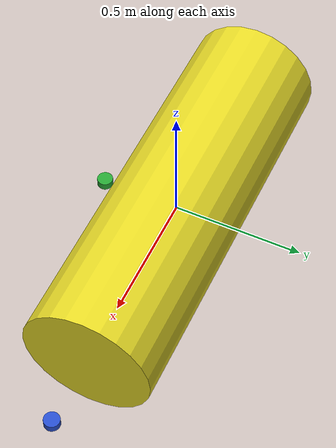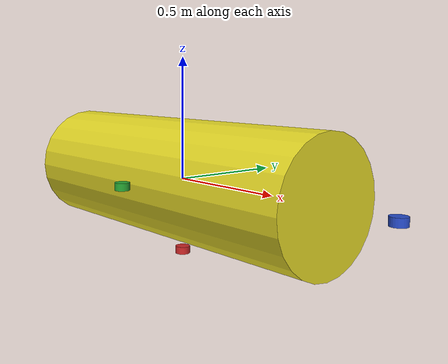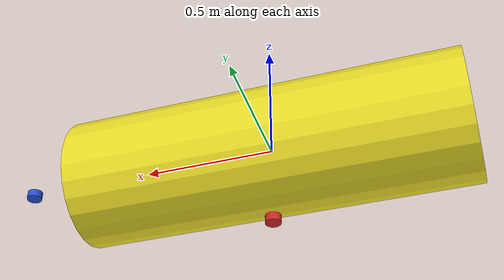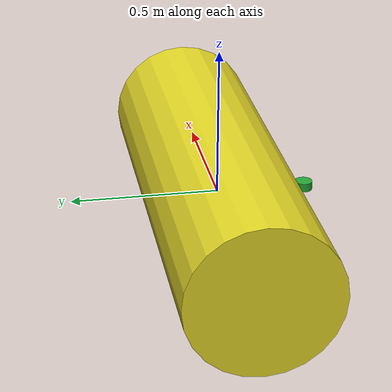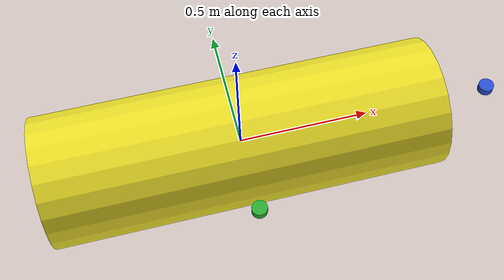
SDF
<?xml version="1.0"?>
<sdf version="1.5">
  <model name="ucf_submarine_simple">
    <pose>0 0 0 3.14 0 0</pose>
    <link name="body">
        <gravity> 0 </gravity>
        <pose>0 0 0 0 0 0</pose>
        <inertial>
          <mass>34.92</mass>
          <inertia>
            <ixx>2</ixx>
            <ixy>0.01</ixy>
            <ixz>0</ixz>
            <iyy>2</iyy>
            <iyz>0.07</iyz>
            <izz>0.36</izz>
          </inertia>
        </inertial>
        <collision name="collision">
            <pose>0 0 0 0 1.57 0</pose>
            <geometry>
                <cylinder>
                    <radius>0.25</radius>
                    <length>1.5</length>
                </cylinder>
            </geometry>
        </collision>
        <visual name="visual">
            <pose>0 0 0 0 1.57 0</pose>
            <geometry>
                <cylinder>
                    <radius>0.25</radius>
                    <length>1.5</length>
                </cylinder>
            </geometry>
            <material>
              <script>
                <uri>file://media/materials/scripts/gazebo.material</uri>
                <name>Gazebo/Yellow</name>
              </script>
            </material>
        </visual>
        <visual name="+Z">
            <pose>0 0 0.3 0 0 0</pose>
            <geometry>
                <cylinder>
                    <radius>0.03</radius>
                    <length>0.03</length>
                </cylinder>
            </geometry>
            <material>
              <script>
                <uri>file://media/materials/scripts/gazebo.material</uri>
                <name>Gazebo/Red</name>
              </script>
            </material>
        </visual>
        <visual name="+Y">
            <pose>0 0.3 0 0 0 0</pose>
            <geometry>
                <cylinder>
                    <radius>0.03</radius>
                    <length>0.03</length>
                </cylinder>
            </geometry>
            <material>
              <script>
                <uri>file://media/materials/scripts/gazebo.material</uri>
                <name>Gazebo/Green</name>
              </script>
            </material>
        </visual>
        <visual name="+X">
            <pose>1 0 0 0 0 0</pose>
            <geometry>
                <cylinder>
                    <radius>0.03</radius>
                    <length>0.03</length>
                </cylinder>
            </geometry>
            <material>
              <script>
                <uri>file://media/materials/scripts/gazebo.material</uri>
                <name>Gazebo/Blue</name>
              </script>
            </material>
        </visual>
    </link>
  </model>
</sdf>
